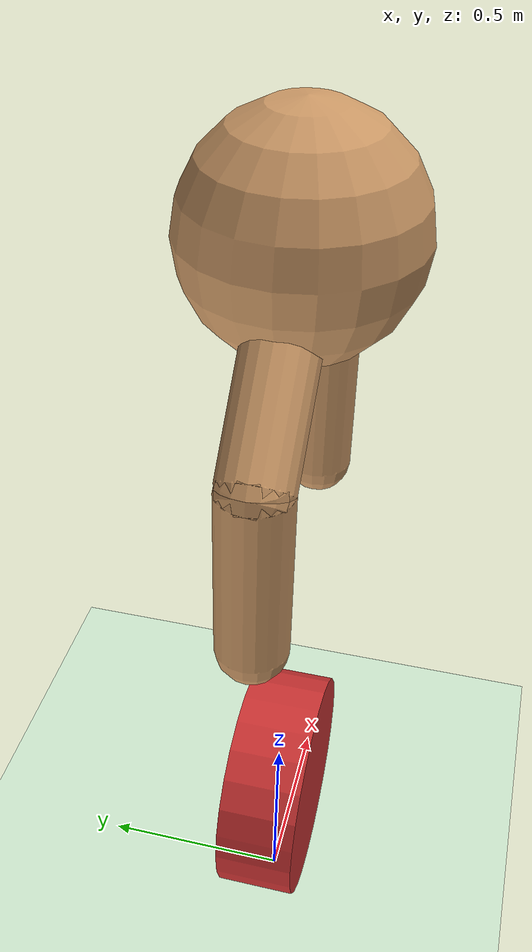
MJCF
<mujoco model="2d_claw_hand">
  <compiler angle="degree" coordinate="local" inertiafromgeom="true"/>
  <option integrator="RK4" timestep="0.0166"/>

  <custom>
    <numeric data="0.0 0.0 0.55 1.0 0.0 0.0 0.0 0.0 1.0 0.0 -1.0 0.0 -1.0 0.0 1.0" name="init_qpos"/>
  </custom>

  <default>
    <joint armature="1" damping="1" limited="true"/>
    <geom conaffinity="3" condim="3" density="5.0" friction="0.15 1 0.15" margin="0.01" rgba="0.8 0.6 0.4 1"/>
  </default>

  <asset>
    <texture builtin="checker" height="100" name="texplane" rgb1="0 0 0" rgb2="0.8 0.8 0.8" type="2d" width="100"/>
    <material name="MatPlane" reflectance="0.5" shininess="1" specular="1" texrepeat="10 2" texture="texplane"/>
  </asset>

  <worldbody>
    <light cutoff="100" diffuse="1 1 1" dir="-0 0 -1.3" directional="true" exponent="1" pos="0 0 1.3" specular=".1 .1 .1"/>
    <camera name="main" mode="fixed" pos="0 -4 1" xyaxes="1 0 0 0 0 1"/>

    <!-- Ground -->
    <geom name="floor" conaffinity="1" condim="3" material="MatPlane" pos="0 0 0" rgba="0.8 0.9 0.8 1" size="10 1 0.1" type="plane"/>

    <!-- Ball object -->
    <body name="object" pos="0 0 0.4">
      <joint type="free" pos="0 0 0"/>
      <geom name="object" type="cylinder" size="0.3 0.1" euler="90 0 0" density="1" rgba="0.8 0.2 0.2 1"/>
    </body>

    <!-- Claw base (fixed to world) -->
    <body name="grasper" pos="0 0 2">
      <!-- Torso -->
      <geom name="torso_geom" pos="0 0 0" size="0.25" type="sphere"/>
      <joint name="slide_x" type="slide" axis="1 0 0" limited="false"/>
      <joint name="slide_y" type="slide" axis="0 0 1" limited="false"/>

      <!-- Left Finger -->
      <body name="left_finger" pos="-0.15 0 -0.15">
        <joint axis="0 1 0" name="left_finger_joint" pos="0.0 0.0 0.0" range="-15 60" type="hinge"/>
        <geom fromto="0.0 0.0 0.0 -0.2 0.0 -0.2" name="left_finger_upper_geom" size="0.08" type="capsule"/>
        <body pos="-0.2 0.0 -0.2">
          <geom fromto="0.0 0.0 0.0 0.0 0.0 -0.4" name="left_finger_lower_geom" size="0.08" type="capsule"/>
        </body>
      </body>

      <!-- Right Finger -->
      <body name="right_finger" pos="0.15 0 -0.15">
        <joint axis="0 -1 0" name="right_finger_joint" pos="0.0 0.0 0.0" range="-15 60" type="hinge"/>
        <geom fromto="0.0 0.0 0.0 0.2 0.0 -0.2" name="right_finger_upper_geom" size="0.08" type="capsule"/>
        <body pos="0.2 0.0 -0.2">
          <geom fromto="0.0 0.0 0.0 0.0 0.0 -0.4" name="right_finger_lower_geom" size="0.08" type="capsule"/>
        </body>
      </body>
    </body>

  </worldbody>

  <actuator>
    <motor name="move_horizontal" joint="slide_x" ctrlrange="-1 1" ctrllimited="true" gear="2"/>
    <motor name="move_vertical" joint="slide_y" ctrlrange="-1 1" ctrllimited="true" gear="4"/>

    <motor name="grab_left" joint="left_finger_joint" ctrlrange="-1 1" ctrllimited="true" gear="10"/>
    <motor name="grab_right" joint="right_finger_joint" ctrlrange="-1 1" ctrllimited="true" gear="10"/>
  </actuator>

</mujoco>
